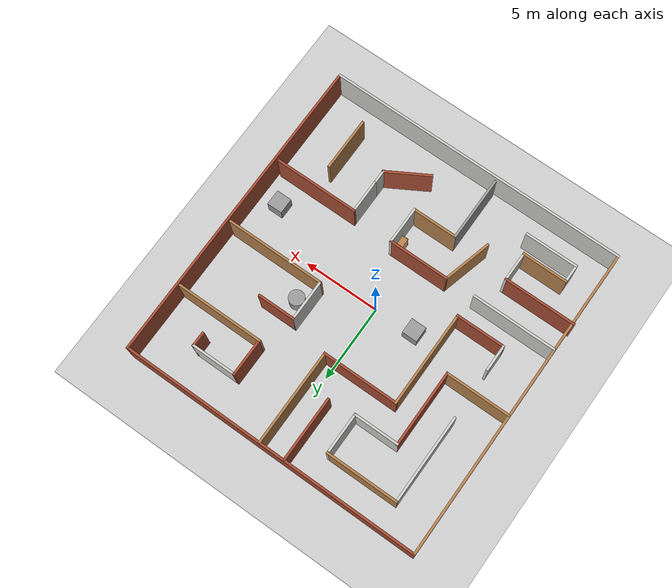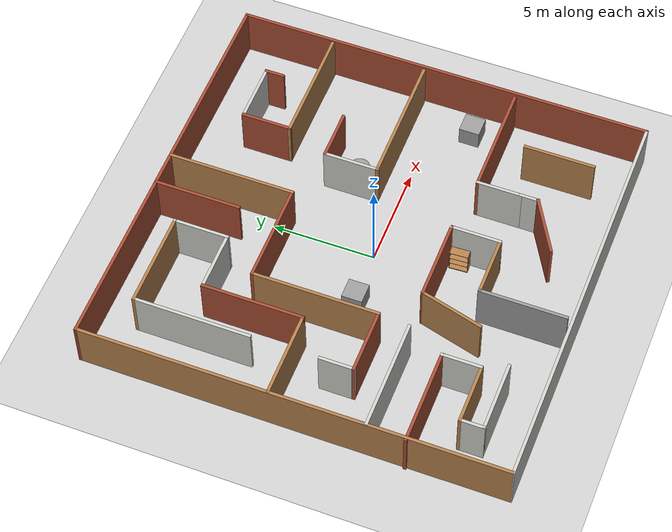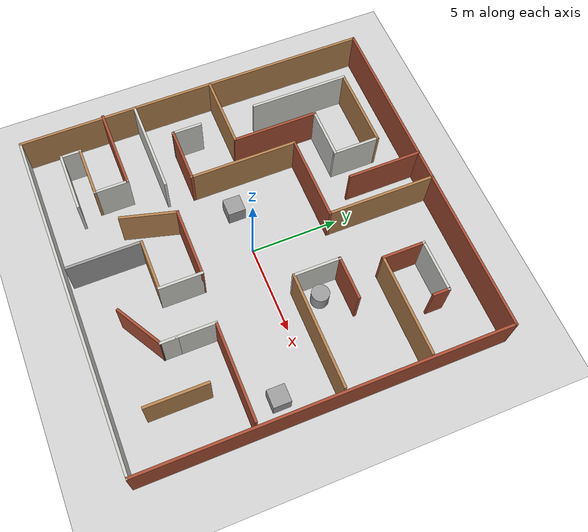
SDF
<sdf version="1.7">
 <world name="default">
  <light name="sun" type="directional">
   <pose>0 0 10 0 -0 0</pose>
   <diffuse>0.8 0.8 0.8 1</diffuse>
   <specular>0.2 0.2 0.2 1</specular>
   <attenuation>
    <range>1000</range>
    <constant>0.9</constant>
    <linear>0.01</linear>
    <quadratic>0.001</quadratic>
   </attenuation>
   <direction>-0.5 0.1 -0.9</direction>
   <spot><inner_angle>0</inner_angle><outer_angle>0</outer_angle><falloff>0</falloff></spot>
  </light>
  <model name="ground_plane">
   <static>1</static>
   <link name="link">
    <collision name="collision">
     <geometry><plane><normal>0 0 1</normal><size>100 100</size></plane></geometry>
     <surface><friction><ode><mu>100</mu><mu2>50</mu2></ode></friction></surface>
    </collision>
    <visual name="visual">
     <cast_shadows>0</cast_shadows>
     <geometry><plane><normal>0 0 1</normal><size>100 100</size></plane></geometry>
     <material>
      <script><uri>file://media/materials/scripts/gazebo.material</uri><name>Gazebo/Grey</name></script>
     </material>
    </visual>
   </link>
  </model>
  <gravity>0 0 -9.8</gravity>
  <magnetic_field>6e-06 2.3e-05 -4.2e-05</magnetic_field>
  <atmosphere type="adiabatic"/>
  <physics type="ode">
   <max_step_size>0.001</max_step_size>
   <real_time_factor>1</real_time_factor>
   <real_time_update_rate>1000</real_time_update_rate>
  </physics>
  <scene><ambient>0.4 0.4 0.4 1</ambient><background>0.7 0.7 0.7 1</background><shadows>1</shadows></scene>
  <audio><device>default</device></audio>
  <spherical_coordinates>
   <surface_model>EARTH_WGS84</surface_model>
   <latitude_deg>0</latitude_deg>
   <longitude_deg>0</longitude_deg>
   <elevation>0</elevation>
   <heading_deg>0</heading_deg>
  </spherical_coordinates>
  <model name="test">
   <pose>-0.111354 0.159386 0 0 -0 0</pose>
   <link name="Wall_0">
    <collision name="Wall_0_Collision">
     <geometry><box><size>19.75 0.15 2.5</size></box></geometry>
     <pose>0 0 1.25 0 -0 0</pose>
    </collision>
    <visual name="Wall_0_Visual">
     <pose>0 0 1.25 0 -0 0</pose>
     <geometry><box><size>19.75 0.15 2.5</size></box></geometry>
     <material>
      <script><uri>file://media/materials/scripts/gazebo.material</uri><name>Gazebo/CeilingTiled</name></script>
      <ambient>1 1 1 1</ambient>
     </material>
     <meta><layer>0</layer></meta>
    </visual>
    <pose>0.048183 -10.235 0 0 -0 0</pose>
   </link>
   <link name="Wall_19">
    <collision name="Wall_19_Collision">
     <geometry><box><size>4.25 0.15 2.5</size></box></geometry>
     <pose>0 0 1.25 0 -0 0</pose>
    </collision>
    <visual name="Wall_19_Visual">
     <pose>0 0 1.25 0 -0 0</pose>
     <geometry><box><size>4.25 0.15 2.5</size></box></geometry>
     <material>
      <script><uri>file://media/materials/scripts/gazebo.material</uri><name>Gazebo/Wood</name></script>
      <ambient>1 1 1 1</ambient>
     </material>
     <meta><layer>0</layer></meta>
    </visual>
    <pose>-7.66228 1.04581 0 0 -0 0</pose>
   </link>
   <link name="Wall_2">
    <collision name="Wall_2_Collision">
     <geometry><box><size>20.5493 0.15 2.5</size></box></geometry>
     <pose>0 0 1.25 0 -0 0</pose>
    </collision>
    <visual name="Wall_2_Visual">
     <pose>0 0 1.25 0 -0 0</pose>
     <geometry><box><size>20.5493 0.15 2.5</size></box></geometry>
     <material>
      <script><uri>file://media/materials/scripts/gazebo.material</uri><name>Gazebo/Bricks</name></script>
      <ambient>1 1 1 1</ambient>
     </material>
     <meta><layer>0</layer></meta>
    </visual>
    <pose>9.84818 -0.035312 0 0 -0 1.5708</pose>
   </link>
   <link name="Wall_20">
    <collision name="Wall_20_Collision">
     <geometry><box><size>5 0.15 2.5</size></box></geometry>
     <pose>0 0 1.25 0 -0 0</pose>
    </collision>
    <visual name="Wall_20_Visual">
     <pose>0 0 1.25 0 -0 0</pose>
     <geometry><box><size>5 0.15 2.5</size></box></geometry>
     <material>
      <script><uri>file://media/materials/scripts/gazebo.material</uri><name>Gazebo/Bricks</name></script>
      <ambient>1 1 1 1</ambient>
     </material>
     <meta><layer>0</layer></meta>
    </visual>
    <pose>-5.61228 3.47081 0 0 -0 1.5708</pose>
   </link>
   <link name="Wall_21">
    <collision name="Wall_21_Collision">
     <geometry><box><size>3 0.15 2.5</size></box></geometry>
     <pose>0 0 1.25 0 -0 0</pose>
    </collision>
    <visual name="Wall_21_Visual">
     <pose>0 0 1.25 0 -0 0</pose>
     <geometry><box><size>3 0.15 2.5</size></box></geometry>
     <material>
      <script><uri>file://media/materials/scripts/gazebo.material</uri><name>Gazebo/CeilingTiled</name></script>
      <ambient>1 1 1 1</ambient>
     </material>
     <meta><layer>0</layer></meta>
    </visual>
    <pose>-4.18728 5.89581 0 0 -0 0</pose>
   </link>
   <link name="Wall_22">
    <collision name="Wall_22_Collision">
     <geometry><box><size>2.75 0.15 2.5</size></box></geometry>
     <pose>0 0 1.25 0 -0 0</pose>
    </collision>
    <visual name="Wall_22_Visual">
     <pose>0 0 1.25 0 -0 0</pose>
     <geometry><box><size>2.75 0.15 2.5</size></box></geometry>
     <material>
      <script><uri>file://media/materials/scripts/gazebo.material</uri><name>Gazebo/CeilingTiled</name></script>
      <ambient>1 1 1 1</ambient>
     </material>
     <meta><layer>0</layer></meta>
    </visual>
    <pose>-2.76228 7.19581 0 0 -0 1.5708</pose>
   </link>
   <link name="Wall_23">
    <collision name="Wall_23_Collision">
     <geometry><box><size>4.75 0.15 2.5</size></box></geometry>
     <pose>0 0 1.25 0 -0 0</pose>
    </collision>
    <visual name="Wall_23_Visual">
     <pose>0 0 1.25 0 -0 0</pose>
     <geometry><box><size>4.75 0.15 2.5</size></box></geometry>
     <material>
      <script><uri>file://media/materials/scripts/gazebo.material</uri><name>Gazebo/Wood</name></script>
      <ambient>1 1 1 1</ambient>
     </material>
     <meta><layer>0</layer></meta>
    </visual>
    <pose>-5.06228 8.49581 0 0 -0 3.14159</pose>
   </link>
   <link name="Wall_24">
    <collision name="Wall_24_Collision">
     <geometry><box><size>5.75 0.15 2.5</size></box></geometry>
     <pose>0 0 1.25 0 -0 0</pose>
    </collision>
    <visual name="Wall_24_Visual">
     <pose>0 0 1.25 0 -0 0</pose>
     <geometry><box><size>5.75 0.15 2.5</size></box></geometry>
     <material>
      <script><uri>file://media/materials/scripts/gazebo.material</uri><name>Gazebo/CeilingTiled</name></script>
      <ambient>1 1 1 1</ambient>
     </material>
     <meta><layer>0</layer></meta>
    </visual>
    <pose>-7.36228 5.69581 0 0 -0 -1.5708</pose>
   </link>
   <link name="Wall_26">
    <collision name="Wall_26_Collision">
     <geometry><box><size>6.25 0.15 2.5</size></box></geometry>
     <pose>0 0 1.25 0 -0 0</pose>
    </collision>
    <visual name="Wall_26_Visual">
     <pose>0 0 1.25 0 -0 0</pose>
     <geometry><box><size>6.25 0.15 2.5</size></box></geometry>
     <material>
      <script><uri>file://media/materials/scripts/gazebo.material</uri><name>Gazebo/Wood</name></script>
      <ambient>1 1 1 1</ambient>
     </material>
     <meta><layer>0</layer></meta>
    </visual>
    <pose>0.631764 7.1149 0 0 -0 -1.5708</pose>
   </link>
   <link name="Wall_27">
    <collision name="Wall_27_Collision">
     <geometry><box><size>5 0.15 2.5</size></box></geometry>
     <pose>0 0 1.25 0 -0 0</pose>
    </collision>
    <visual name="Wall_27_Visual">
     <pose>0 0 1.25 0 -0 0</pose>
     <geometry><box><size>5 0.15 2.5</size></box></geometry>
     <material>
      <script><uri>file://media/materials/scripts/gazebo.material</uri><name>Gazebo/Bricks</name></script>
      <ambient>1 1 1 1</ambient>
     </material>
     <meta><layer>0</layer></meta>
    </visual>
    <pose>-1.79324 4.0649 0 0 -0 3.14159</pose>
   </link>
   <link name="Wall_28">
    <collision name="Wall_28_Collision">
     <geometry><box><size>6.25 0.15 2.5</size></box></geometry>
     <pose>0 0 1.25 0 -0 0</pose>
    </collision>
    <visual name="Wall_28_Visual">
     <pose>0 0 1.25 0 -0 0</pose>
     <geometry><box><size>6.25 0.15 2.5</size></box></geometry>
     <material>
      <script><uri>file://media/materials/scripts/gazebo.material</uri><name>Gazebo/Wood</name></script>
      <ambient>1 1 1 1</ambient>
     </material>
     <meta><layer>0</layer></meta>
    </visual>
    <pose>-4.21824 1.0149 0 0 -0 -1.5708</pose>
   </link>
   <link name="Wall_29">
    <collision name="Wall_29_Collision">
     <geometry><box><size>3.25 0.15 2.5</size></box></geometry>
     <pose>0 0 1.25 0 -0 0</pose>
    </collision>
    <visual name="Wall_29_Visual">
     <pose>0 0 1.25 0 -0 0</pose>
     <geometry><box><size>3.25 0.15 2.5</size></box></geometry>
     <material>
      <script><uri>file://media/materials/scripts/gazebo.material</uri><name>Gazebo/Bricks</name></script>
      <ambient>1 1 1 1</ambient>
     </material>
     <meta><layer>0</layer></meta>
    </visual>
    <pose>-5.76824 -2.0351 0 0 -0 3.14159</pose>
   </link>
   <link name="Wall_3">
    <collision name="Wall_3_Collision">
     <geometry><box><size>19.75 0.15 2.5</size></box></geometry>
     <pose>0 0 1.25 0 -0 0</pose>
    </collision>
    <visual name="Wall_3_Visual">
     <pose>0 0 1.25 0 -0 0</pose>
     <geometry><box><size>19.75 0.15 2.5</size></box></geometry>
     <material>
      <script><uri>file://media/materials/scripts/gazebo.material</uri><name>Gazebo/Bricks</name></script>
      <ambient>1 1 1 1</ambient>
     </material>
     <meta><layer>0</layer></meta>
    </visual>
    <pose>0.048183 10.1995 0 0 -0 3.138</pose>
   </link>
   <link name="Wall_30">
    <collision name="Wall_30_Collision">
     <geometry><box><size>1.75 0.15 2.5</size></box></geometry>
     <pose>0 0 1.25 0 -0 0</pose>
    </collision>
    <visual name="Wall_30_Visual">
     <pose>0 0 1.25 0 -0 0</pose>
     <geometry><box><size>1.75 0.15 2.5</size></box></geometry>
     <material>
      <script><uri>file://media/materials/scripts/gazebo.material</uri><name>Gazebo/CeilingTiled</name></script>
      <ambient>1 1 1 1</ambient>
     </material>
     <meta><layer>0</layer></meta>
    </visual>
    <pose>-7.31824 -1.2351 0 0 -0 1.5708</pose>
   </link>
   <link name="Wall_33">
    <collision name="Wall_33_Collision">
     <geometry><box><size>4.25 0.15 2.5</size></box></geometry>
     <pose>0 0 1.25 0 -0 0</pose>
    </collision>
    <visual name="Wall_33_Visual">
     <pose>0 0 1.25 0 -0 0</pose>
     <geometry><box><size>4.25 0.15 2.5</size></box></geometry>
     <material>
      <script><uri>file://media/materials/scripts/gazebo.material</uri><name>Gazebo/Bricks</name></script>
      <ambient>1 1 1 1</ambient>
     </material>
     <meta><layer>0</layer></meta>
    </visual>
    <pose>-1.04688 8.1149 0 0 -0 -1.5708</pose>
   </link>
   <link name="Wall_35">
    <collision name="Wall_35_Collision">
     <geometry><box><size>5.75 0.15 2.5</size></box></geometry>
     <pose>0 0 1.25 0 -0 0</pose>
    </collision>
    <visual name="Wall_35_Visual">
     <pose>0 0 1.25 0 -0 0</pose>
     <geometry><box><size>5.75 0.15 2.5</size></box></geometry>
     <material>
      <script><uri>file://media/materials/scripts/gazebo.material</uri><name>Gazebo/Wood</name></script>
      <ambient>1 1 1 1</ambient>
     </material>
     <meta><layer>0</layer></meta>
    </visual>
    <pose>6.86012 5.58267 0 0 -0 3.14159</pose>
   </link>
   <link name="Wall_36">
    <collision name="Wall_36_Collision">
     <geometry><box><size>2.5 0.15 2.5</size></box></geometry>
     <pose>0 0 1.25 0 -0 0</pose>
    </collision>
    <visual name="Wall_36_Visual">
     <pose>0 0 1.25 0 -0 0</pose>
     <geometry><box><size>2.5 0.15 2.5</size></box></geometry>
     <material>
      <script><uri>file://media/materials/scripts/gazebo.material</uri><name>Gazebo/Bricks</name></script>
      <ambient>1 1 1 1</ambient>
     </material>
     <meta><layer>0</layer></meta>
    </visual>
    <pose>4.06012 6.75767 0 0 -0 1.5708</pose>
   </link>
   <link name="Wall_37">
    <collision name="Wall_37_Collision">
     <geometry><box><size>3 0.15 2.5</size></box></geometry>
     <pose>0 0 1.25 0 -0 0</pose>
    </collision>
    <visual name="Wall_37_Visual">
     <pose>0 0 1.25 0 -0 0</pose>
     <geometry><box><size>3 0.15 2.5</size></box></geometry>
     <material>
      <script><uri>file://media/materials/scripts/gazebo.material</uri><name>Gazebo/CeilingTiled</name></script>
      <ambient>1 1 1 1</ambient>
     </material>
     <meta><layer>0</layer></meta>
    </visual>
    <pose>5.48512 7.93267 0 0 -0 0</pose>
   </link>
   <link name="Wall_38">
    <collision name="Wall_38_Collision">
     <geometry><box><size>1 0.15 2.5</size></box></geometry>
     <pose>0 0 1.25 0 -0 0</pose>
    </collision>
    <visual name="Wall_38_Visual">
     <pose>0 0 1.25 0 -0 0</pose>
     <geometry><box><size>1 0.15 2.5</size></box></geometry>
     <material>
      <script><uri>file://media/materials/scripts/gazebo.material</uri><name>Gazebo/Bricks</name></script>
      <ambient>1 1 1 1</ambient>
     </material>
     <meta><layer>0</layer></meta>
    </visual>
    <pose>6.91012 7.50767 0 0 -0 -1.5708</pose>
   </link>
   <link name="Wall_41">
    <collision name="Wall_41_Collision">
     <geometry><box><size>2 0.15 2.5</size></box></geometry>
     <pose>0 0 1.25 0 -0 0</pose>
    </collision>
    <visual name="Wall_41_Visual">
     <pose>0 0 1.25 0 -0 0</pose>
     <geometry><box><size>2 0.15 2.5</size></box></geometry>
     <material>
      <script><uri>file://media/materials/scripts/gazebo.material</uri><name>Gazebo/CeilingTiled</name></script>
      <ambient>1 1 1 1</ambient>
     </material>
     <meta><layer>0</layer></meta>
    </visual>
    <pose>-5.24839 -6.32154 0 0 -0 -1.5708</pose>
   </link>
   <link name="Wall_42">
    <collision name="Wall_42_Collision">
     <geometry><box><size>3 0.15 2.5</size></box></geometry>
     <pose>0 0 1.25 0 -0 0</pose>
    </collision>
    <visual name="Wall_42_Visual">
     <pose>0 0 1.25 0 -0 0</pose>
     <geometry><box><size>3 0.15 2.5</size></box></geometry>
     <material>
      <script><uri>file://media/materials/scripts/gazebo.material</uri><name>Gazebo/Wood</name></script>
      <ambient>1 1 1 1</ambient>
     </material>
     <meta><layer>0</layer></meta>
    </visual>
    <pose>-6.67339 -7.24654 0 0 -0 3.14159</pose>
   </link>
   <link name="Wall_43">
    <collision name="Wall_43_Collision">
     <geometry><box><size>1.25 0.15 2.5</size></box></geometry>
     <pose>0 0 1.25 0 -0 0</pose>
    </collision>
    <visual name="Wall_43_Visual">
     <pose>0 0 1.25 0 -0 0</pose>
     <geometry><box><size>1.25 0.15 2.5</size></box></geometry>
     <material>
      <script><uri>file://media/materials/scripts/gazebo.material</uri><name>Gazebo/CeilingTiled</name></script>
      <ambient>1 1 1 1</ambient>
     </material>
     <meta><layer>0</layer></meta>
    </visual>
    <pose>-8.09839 -7.79654 0 0 -0 -1.5708</pose>
   </link>
   <link name="Wall_44">
    <collision name="Wall_44_Collision">
     <geometry><box><size>3.5 0.15 2.5</size></box></geometry>
     <pose>0 0 1.25 0 -0 0</pose>
    </collision>
    <visual name="Wall_44_Visual">
     <pose>0 0 1.25 0 -0 0</pose>
     <geometry><box><size>3.5 0.15 2.5</size></box></geometry>
     <material>
      <script><uri>file://media/materials/scripts/gazebo.material</uri><name>Gazebo/CeilingTiled</name></script>
      <ambient>1 1 1 1</ambient>
     </material>
     <meta><layer>0</layer></meta>
    </visual>
    <pose>-6.42339 -8.34654 0 0 -0 0</pose>
   </link>
   <link name="Wall_46">
    <collision name="Wall_46_Collision">
     <geometry><box><size>5.5 0.15 2.5</size></box></geometry>
     <pose>0 0 1.25 0 -0 0</pose>
    </collision>
    <visual name="Wall_46_Visual">
     <pose>0 0 1.25 0 -0 0</pose>
     <geometry><box><size>5.5 0.15 2.5</size></box></geometry>
     <material>
      <script><uri>file://media/materials/scripts/gazebo.material</uri><name>Gazebo/CeilingTiled</name></script>
      <ambient>1 1 1 1</ambient>
     </material>
     <meta><layer>0</layer></meta>
    </visual>
    <pose>-7.03728 -3.53642 0 0 -0 0</pose>
   </link>
   <link name="Wall_48">
    <collision name="Wall_48_Collision">
     <geometry><box><size>4.75 0.15 2.5</size></box></geometry>
     <pose>0 0 1.25 0 -0 0</pose>
    </collision>
    <visual name="Wall_48_Visual">
     <pose>0 0 1.25 0 -0 0</pose>
     <geometry><box><size>4.75 0.15 2.5</size></box></geometry>
     <material>
      <script><uri>file://media/materials/scripts/gazebo.material</uri><name>Gazebo/Bricks</name></script>
      <ambient>1 1 1 1</ambient>
     </material>
     <meta><layer>0</layer></meta>
    </visual>
    <pose>-7.54839 -5.39654 0 0 -0 3.14159</pose>
   </link>
   <link name="Wall_5">
    <collision name="Wall_5_Collision">
     <geometry><box><size>20.5 0.15 2.5</size></box></geometry>
     <pose>0 0 1.25 0 -0 0</pose>
    </collision>
    <visual name="Wall_5_Visual">
     <pose>0 0 1.25 0 -0 0</pose>
     <geometry><box><size>20.5 0.15 2.5</size></box></geometry>
     <material>
      <script><uri>file://media/materials/scripts/gazebo.material</uri><name>Gazebo/Wood</name></script>
      <ambient>1 1 1 1</ambient>
     </material>
     <meta><layer>0</layer></meta>
    </visual>
    <pose>-9.75182 -0.010659 0 0 -0 -1.5708</pose>
   </link>
   <link name="Wall_50">
    <collision name="Wall_50_Collision">
     <geometry><box><size>4.25 0.15 2.5</size></box></geometry>
     <pose>0 0 1.25 0 -0 0</pose>
    </collision>
    <visual name="Wall_50_Visual">
     <pose>0 0 1.25 0 -0 0</pose>
     <geometry><box><size>4.25 0.15 2.5</size></box></geometry>
     <material>
      <script><uri>file://media/materials/scripts/gazebo.material</uri><name>Gazebo/Grey</name></script>
      <ambient>1 1 1 1</ambient>
     </material>
     <meta><layer>0</layer></meta>
    </visual>
    <pose>-1.45519 -7.8834 0 0 -0 1.5708</pose>
   </link>
   <link name="Wall_51">
    <collision name="Wall_51_Collision">
     <geometry><box><size>3 0.15 2.5</size></box></geometry>
     <pose>0 0 1.25 0 -0 0</pose>
    </collision>
    <visual name="Wall_51_Visual">
     <pose>0 0 1.25 0 -0 0</pose>
     <geometry><box><size>3 0.15 2.5</size></box></geometry>
     <material>
      <script><uri>file://media/materials/scripts/gazebo.material</uri><name>Gazebo/Wood</name></script>
      <ambient>1 1 1 1</ambient>
     </material>
     <meta><layer>0</layer></meta>
    </visual>
    <pose>-0.030193 -5.8334 0 0 -0 0</pose>
   </link>
   <link name="Wall_52">
    <collision name="Wall_52_Collision">
     <geometry><box><size>2.5 0.15 2.5</size></box></geometry>
     <pose>0 0 1.25 0 -0 0</pose>
    </collision>
    <visual name="Wall_52_Visual">
     <pose>0 0 1.25 0 -0 0</pose>
     <geometry><box><size>2.5 0.15 2.5</size></box></geometry>
     <material>
      <script><uri>file://media/materials/scripts/gazebo.material</uri><name>Gazebo/CeilingTiled</name></script>
      <ambient>1 1 1 1</ambient>
     </material>
     <meta><layer>0</layer></meta>
    </visual>
    <pose>1.39481 -4.6584 0 0 -0 1.5708</pose>
   </link>
   <link name="Wall_53">
    <collision name="Wall_53_Collision">
     <geometry><box><size>4 0.15 2.5</size></box></geometry>
     <pose>0 0 1.25 0 -0 0</pose>
    </collision>
    <visual name="Wall_53_Visual">
     <pose>0 0 1.25 0 -0 0</pose>
     <geometry><box><size>4 0.15 2.5</size></box></geometry>
     <material>
      <script><uri>file://media/materials/scripts/gazebo.material</uri><name>Gazebo/Bricks</name></script>
      <ambient>1 1 1 1</ambient>
     </material>
     <meta><layer>0</layer></meta>
    </visual>
    <pose>-0.530193 -3.4834 0 0 -0 3.14159</pose>
   </link>
   <link name="Wall_54">
    <collision name="Wall_54_Collision">
     <geometry><box><size>3.25 0.15 2.5</size></box></geometry>
     <pose>0 0 1.25 0 -0 0</pose>
    </collision>
    <visual name="Wall_54_Visual">
     <pose>0 0 1.25 0 -0 0</pose>
     <geometry><box><size>3.25 0.15 2.5</size></box></geometry>
     <material>
      <script><uri>file://media/materials/scripts/gazebo.material</uri><name>Gazebo/Wood</name></script>
      <ambient>1 1 1 1</ambient>
     </material>
     <meta><layer>0</layer></meta>
    </visual>
    <pose>-2.85636 -4.98058 0 0 -0 -1.8326</pose>
   </link>
   <link name="Wall_56">
    <collision name="Wall_56_Collision">
     <geometry><box><size>5.5 0.15 2.5</size></box></geometry>
     <pose>0 0 1.25 0 -0 0</pose>
    </collision>
    <visual name="Wall_56_Visual">
     <pose>0 0 1.25 0 -0 0</pose>
     <geometry><box><size>5.5 0.15 2.5</size></box></geometry>
     <material>
      <script><uri>file://media/materials/scripts/gazebo.material</uri><name>Gazebo/Bricks</name></script>
      <ambient>1 1 1 1</ambient>
     </material>
     <meta><layer>0</layer></meta>
    </visual>
    <pose>6.89438 -3.76327 0 0 -0 3.14159</pose>
   </link>
   <link name="Wall_65">
    <collision name="Wall_65_Collision">
     <geometry><box><size>2.25 0.15 2.5</size></box></geometry>
     <pose>0 0 1.25 0 -0 0</pose>
    </collision>
    <visual name="Wall_65_Visual">
     <pose>0 0 1.25 0 -0 0</pose>
     <geometry><box><size>2.25 0.15 2.5</size></box></geometry>
     <material>
      <script><uri>file://media/materials/scripts/gazebo.material</uri><name>Gazebo/CeilingTiled</name></script>
      <ambient>1 1 1 1</ambient>
     </material>
     <meta><layer>0</layer></meta>
    </visual>
    <pose>4.21938 -4.81327 0 0 -0 -1.5708</pose>
   </link>
   <link name="Wall_66">
    <collision name="Wall_66_Collision">
     <geometry><box><size>1 0.15 2.5</size></box></geometry>
     <pose>0 0 1.25 0 -0 0</pose>
    </collision>
    <visual name="Wall_66_Visual">
     <pose>0 0 1.25 0 -0 0</pose>
     <geometry><box><size>1 0.15 2.5</size></box></geometry>
     <material>
      <script><uri>file://media/materials/scripts/gazebo.material</uri><name>Gazebo/CeilingTiled</name></script>
      <ambient>1 1 1 1</ambient>
     </material>
     <meta><layer>0</layer></meta>
    </visual>
    <pose>4.21938 -6.28827 0 0 -0 -1.5708</pose>
   </link>
   <link name="Wall_67">
    <collision name="Wall_67_Collision">
     <geometry><box><size>3 0.15 2.5</size></box></geometry>
     <pose>0 0 1.25 0 -0 0</pose>
    </collision>
    <visual name="Wall_67_Visual">
     <pose>0 0 1.25 0 -0 0</pose>
     <geometry><box><size>3 0.15 2.5</size></box></geometry>
     <material>
      <script><uri>file://media/materials/scripts/gazebo.material</uri><name>Gazebo/Bricks</name></script>
      <ambient>1 1 1 1</ambient>
     </material>
     <meta><layer>0</layer></meta>
    </visual>
    <pose>2.9853 -7.42577 0 0 -0 -2.61799</pose>
   </link>
   <link name="Wall_69">
    <collision name="Wall_69_Collision">
     <geometry><box><size>3.5 0.15 2.5</size></box></geometry>
     <pose>0 0 1.25 0 -0 0</pose>
    </collision>
    <visual name="Wall_69_Visual">
     <pose>0 0 1.25 0 -0 0</pose>
     <geometry><box><size>3.5 0.15 2.5</size></box></geometry>
     <material>
      <script><uri>file://media/materials/scripts/gazebo.material</uri><name>Gazebo/Wood</name></script>
      <ambient>1 1 1 1</ambient>
     </material>
     <meta><layer>0</layer></meta>
    </visual>
    <pose>6.98337 -6.84469 0 0 -0 -1.5708</pose>
   </link>
   <link name="Wall_72">
    <collision name="Wall_72_Collision">
     <geometry><box><size>6.5 0.15 2.5</size></box></geometry>
     <pose>0 0 1.25 0 -0 0</pose>
    </collision>
    <visual name="Wall_72_Visual">
     <pose>0 0 1.25 0 -0 0</pose>
     <geometry><box><size>6.5 0.15 2.5</size></box></geometry>
     <material>
      <script><uri>file://media/materials/scripts/gazebo.material</uri><name>Gazebo/Wood</name></script>
      <ambient>1 1 1 1</ambient>
     </material>
     <meta><layer>0</layer></meta>
    </visual>
    <pose>6.43975 0.864334 0 0 -0 3.14159</pose>
   </link>
   <link name="Wall_73">
    <collision name="Wall_73_Collision">
     <geometry><box><size>2.75 0.15 2.5</size></box></geometry>
     <pose>0 0 1.25 0 -0 0</pose>
    </collision>
    <visual name="Wall_73_Visual">
     <pose>0 0 1.25 0 -0 0</pose>
     <geometry><box><size>2.75 0.15 2.5</size></box></geometry>
     <material>
      <script><uri>file://media/materials/scripts/gazebo.material</uri><name>Gazebo/CeilingTiled</name></script>
      <ambient>1 1 1 1</ambient>
     </material>
     <meta><layer>0</layer></meta>
    </visual>
    <pose>3.26475 2.16433 0 0 -0 1.5708</pose>
   </link>
   <link name="Wall_74">
    <collision name="Wall_74_Collision">
     <geometry><box><size>2.5 0.15 2.5</size></box></geometry>
     <pose>0 0 1.25 0 -0 0</pose>
    </collision>
    <visual name="Wall_74_Visual">
     <pose>0 0 1.25 0 -0 0</pose>
     <geometry><box><size>2.5 0.15 2.5</size></box></geometry>
     <material>
      <script><uri>file://media/materials/scripts/gazebo.material</uri><name>Gazebo/Bricks</name></script>
      <ambient>1 1 1 1</ambient>
     </material>
     <meta><layer>0</layer></meta>
    </visual>
    <pose>4.43975 3.46433 0 0 -0 0</pose>
   </link>
   <static>1</static>
  </model>
  <model name="unit_box">
   <pose>8.35454 -1.91956 0.499995 -1e-05 -0 0</pose>
   <link name="link">
    <inertial>
     <mass>1</mass>
     <inertia>
      <ixx>0.166667</ixx>
      <ixy>0</ixy>
      <ixz>0</ixz>
      <iyy>0.166667</iyy>
      <iyz>0</iyz>
      <izz>0.166667</izz>
     </inertia>
    </inertial>
    <collision name="collision"><geometry><box><size>1 1 1</size></box></geometry></collision>
    <visual name="visual">
     <geometry><box><size>1 1 1</size></box></geometry>
     <material>
      <script><name>Gazebo/Grey</name><uri>file://media/materials/scripts/gazebo.material</uri></script>
     </material>
    </visual>
   </link>
  </model>
  <model name="bookshelf">
   <static>1</static>
   <link name="link">
    <inertial><mass>1</mass></inertial>
    <collision name="back">
     <pose>0 0.005 0.6 0 -0 0</pose>
     <geometry><box><size>0.9 0.01 1.2</size></box></geometry>
    </collision>
    <visual name="visual1">
     <pose>0 0.005 0.6 0 -0 0</pose>
     <geometry><box><size>0.9 0.01 1.2</size></box></geometry>
     <material>
      <script><uri>file://media/materials/scripts/gazebo.material</uri><name>Gazebo/Wood</name></script>
     </material>
    </visual>
    <collision name="left_side">
     <pose>0.45 -0.195 0.6 0 -0 0</pose>
     <geometry><box><size>0.02 0.4 1.2</size></box></geometry>
    </collision>
    <visual name="visual2">
     <pose>0.45 -0.195 0.6 0 -0 0</pose>
     <geometry><box><size>0.02 0.4 1.2</size></box></geometry>
     <material>
      <script><uri>file://media/materials/scripts/gazebo.material</uri><name>Gazebo/Wood</name></script>
     </material>
    </visual>
    <collision name="right_side">
     <pose>-0.45 -0.195 0.6 0 -0 0</pose>
     <geometry><box><size>0.02 0.4 1.2</size></box></geometry>
    </collision>
    <visual name="visual3">
     <pose>-0.45 -0.195 0.6 0 -0 0</pose>
     <geometry><box><size>0.02 0.4 1.2</size></box></geometry>
     <material>
      <script><uri>file://media/materials/scripts/gazebo.material</uri><name>Gazebo/Wood</name></script>
     </material>
    </visual>
    <collision name="bottom">
     <pose>0 -0.195 0.03 0 -0 0</pose>
     <geometry><box><size>0.88 0.4 0.06</size></box></geometry>
    </collision>
    <visual name="visual4">
     <pose>0 -0.195 0.03 0 -0 0</pose>
     <geometry><box><size>0.88 0.4 0.06</size></box></geometry>
     <material>
      <script><uri>file://media/materials/scripts/gazebo.material</uri><name>Gazebo/Wood</name></script>
     </material>
    </visual>
    <collision name="top">
     <pose>0 -0.195 1.19 0 -0 0</pose>
     <geometry><box><size>0.88 0.4 0.02</size></box></geometry>
    </collision>
    <visual name="visual5">
     <pose>0 -0.195 1.19 0 -0 0</pose>
     <geometry><box><size>0.88 0.4 0.02</size></box></geometry>
     <material>
      <script><uri>file://media/materials/scripts/gazebo.material</uri><name>Gazebo/Wood</name></script>
     </material>
    </visual>
    <collision name="low_shelf">
     <pose>0 -0.195 0.43 0 -0 0</pose>
     <geometry><box><size>0.88 0.4 0.02</size></box></geometry>
    </collision>
    <visual name="visual6">
     <pose>0 -0.195 0.43 0 -0 0</pose>
     <geometry><box><size>0.88 0.4 0.02</size></box></geometry>
     <material>
      <script><uri>file://media/materials/scripts/gazebo.material</uri><name>Gazebo/Wood</name></script>
     </material>
    </visual>
    <collision name="high_shelf">
     <pose>0 -0.195 0.8 0 -0 0</pose>
     <geometry><box><size>0.88 0.4 0.02</size></box></geometry>
    </collision>
    <visual name="visual7">
     <pose>0 -0.195 0.8 0 -0 0</pose>
     <geometry><box><size>0.88 0.4 0.02</size></box></geometry>
     <material>
      <script><uri>file://media/materials/scripts/gazebo.material</uri><name>Gazebo/Wood</name></script>
     </material>
    </visual>
   </link>
   <pose>1.13356 -3.88479 0 0 0 -1.52331</pose>
  </model>
  <model name="unit_cylinder">
   <pose>4.03531 2.24657 0.499998 3e-06 -4e-06 0</pose>
   <link name="link">
    <inertial>
     <mass>1</mass>
     <inertia><ixx>0.145833</ixx><ixy>0</ixy><ixz>0</ixz><iyy>0.145833</iyy><iyz>0</iyz><izz>0.125</izz></inertia>
    </inertial>
    <collision name="collision">
     <geometry><cylinder><radius>0.5</radius><length>1</length></cylinder></geometry>
    </collision>
    <visual name="visual">
     <geometry><cylinder><radius>0.5</radius><length>1</length></cylinder></geometry>
     <material>
      <script><name>Gazebo/Grey</name><uri>file://media/materials/scripts/gazebo.material</uri></script>
     </material>
    </visual>
   </link>
  </model>
  <model name="unit_box_0">
   <pose>-2.6266 -0.101368 0.499995 0 1e-05 0</pose>
   <link name="link">
    <inertial>
     <mass>1</mass>
     <inertia>
      <ixx>0.166667</ixx>
      <ixy>0</ixy>
      <ixz>0</ixz>
      <iyy>0.166667</iyy>
      <iyz>0</iyz>
      <izz>0.166667</izz>
     </inertia>
    </inertial>
    <collision name="collision"><geometry><box><size>1 1 1</size></box></geometry></collision>
    <visual name="visual">
     <geometry><box><size>1 1 1</size></box></geometry>
     <material>
      <script><name>Gazebo/Grey</name><uri>file://media/materials/scripts/gazebo.material</uri></script>
     </material>
    </visual>
   </link>
  </model>
 </world>
</sdf>
